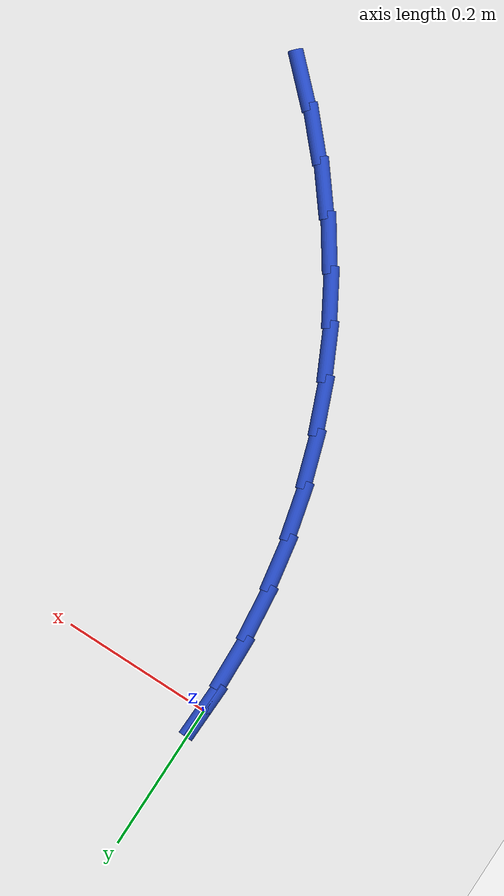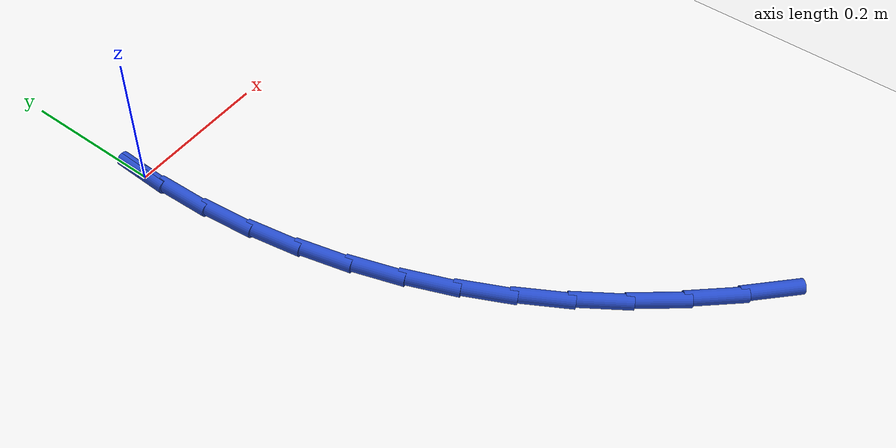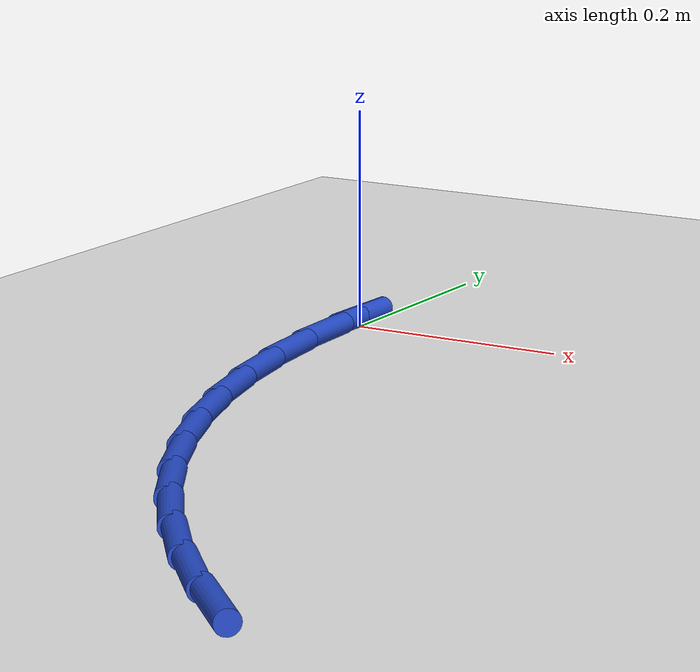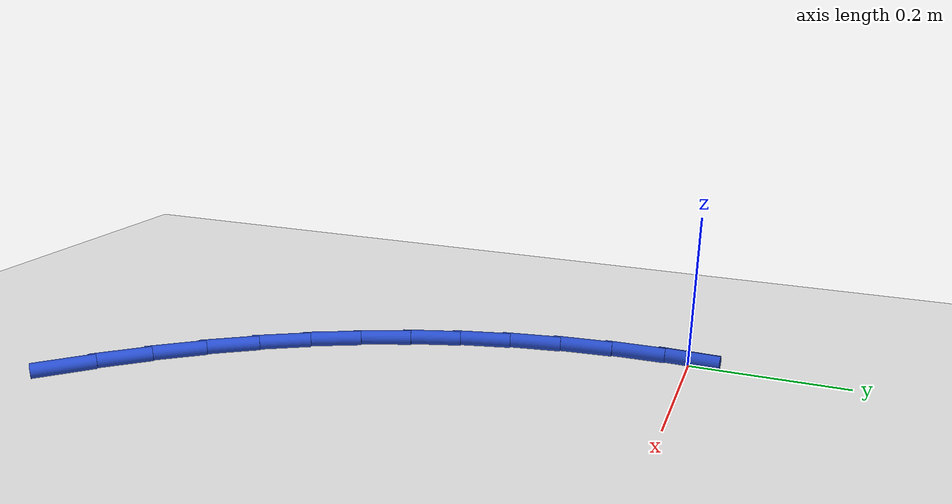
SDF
<sdf version="1.6">
 <world name="default">
  <model name="ground_plane">
   <static>1</static>
   <link name="link">
    <collision name="collision">
     <geometry><plane><normal>0 0 1</normal><size>100 100</size></plane></geometry>
     <surface><friction><ode><mu>100</mu><mu2>50</mu2></ode></friction></surface>
    </collision>
    <visual name="visual">
     <cast_shadows>0</cast_shadows>
     <geometry><plane><normal>0 0 1</normal><size>100 100</size></plane></geometry>
     <material>
      <script><uri>file://media/materials/scripts/gazebo.material</uri><name>Gazebo/WhiteGlow</name></script>
     </material>
    </visual>
   </link>
  </model>
  <model name="line">
   <link name="link_0">
    <pose>-1.734723475976807e-17 8.326672684688674e-17 0.01 0 1.57 1.5382158034172053</pose>
    <collision name="collision">
     <geometry><cylinder><radius>0.01</radius><length>0.08</length></cylinder></geometry>
    </collision>
    <visual name="visual">
     <material>
      <script><name>Gazebo/Blue</name><uri>file://media/materials/scripts/gazebo.material</uri></script>
     </material>
     <geometry><cylinder><radius>0.01</radius><length>0.08</length></cylinder></geometry>
    </visual>
   </link>
   <link name="link_98">
    <pose>0.3311340445507422 -0.7413080871282756 0.01 0 1.57 -0.7678749545440806</pose>
    <collision name="collision">
     <geometry><cylinder><radius>0.01</radius><length>0.08</length></cylinder></geometry>
    </collision>
    <visual name="visual">
     <material>
      <script><name>Gazebo/Blue</name><uri>file://media/materials/scripts/gazebo.material</uri></script>
     </material>
     <geometry><cylinder><radius>0.01</radius><length>0.08</length></cylinder></geometry>
    </visual>
   </link>
   <link name="link_99">
    <pose>0.2805721604973442 -0.6924878745810826 0.01 0 1.57 -0.8341403816708411</pose>
    <collision name="collision">
     <geometry><cylinder><radius>0.01</radius><length>0.08</length></cylinder></geometry>
    </collision>
    <visual name="visual">
     <material>
      <script><name>Gazebo/Blue</name><uri>file://media/materials/scripts/gazebo.material</uri></script>
     </material>
     <geometry><cylinder><radius>0.01</radius><length>0.08</length></cylinder></geometry>
    </visual>
   </link>
   <link name="link_100">
    <pose>0.23331120928367385 -0.6403796078937709 0.01 0 1.57 -0.9017629867846866</pose>
    <collision name="collision">
     <geometry><cylinder><radius>0.01</radius><length>0.08</length></cylinder></geometry>
    </collision>
    <visual name="visual">
     <material>
      <script><name>Gazebo/Blue</name><uri>file://media/materials/scripts/gazebo.material</uri></script>
     </material>
     <geometry><cylinder><radius>0.01</radius><length>0.08</length></cylinder></geometry>
    </visual>
   </link>
   <link name="link_101">
    <pose>0.1897791320099406 -0.5853232407538093 0.01 0 1.57 -0.971678317863092</pose>
    <collision name="collision">
     <geometry><cylinder><radius>0.01</radius><length>0.08</length></cylinder></geometry>
    </collision>
    <visual name="visual">
     <material>
      <script><name>Gazebo/Blue</name><uri>file://media/materials/scripts/gazebo.material</uri></script>
     </material>
     <geometry><cylinder><radius>0.01</radius><length>0.08</length></cylinder></geometry>
    </visual>
   </link>
   <link name="link_102">
    <pose>0.15040315765034046 -0.5276584677490873 0.01 0 1.57 -1.0436772218099946</pose>
    <collision name="collision">
     <geometry><cylinder><radius>0.01</radius><length>0.08</length></cylinder></geometry>
    </collision>
    <visual name="visual">
     <material>
      <script><name>Gazebo/Blue</name><uri>file://media/materials/scripts/gazebo.material</uri></script>
     </material>
     <geometry><cylinder><radius>0.01</radius><length>0.08</length></cylinder></geometry>
    </visual>
   </link>
   <link name="link_103">
    <pose>0.11549397619499756 -0.4676825819810109 0.01 0 1.57 -1.115727153268678</pose>
    <collision name="collision">
     <geometry><cylinder><radius>0.01</radius><length>0.08</length></cylinder></geometry>
    </collision>
    <visual name="visual">
     <material>
      <script><name>Gazebo/Blue</name><uri>file://media/materials/scripts/gazebo.material</uri></script>
     </material>
     <geometry><cylinder><radius>0.01</radius><length>0.08</length></cylinder></geometry>
    </visual>
   </link>
   <link name="link_104">
    <pose>0.08511742714019435 -0.40560379026807053 0.01 0 1.57 -1.1873954752358709</pose>
    <collision name="collision">
     <geometry><cylinder><radius>0.01</radius><length>0.08</length></cylinder></geometry>
    </collision>
    <visual name="visual">
     <material>
      <script><name>Gazebo/Blue</name><uri>file://media/materials/scripts/gazebo.material</uri></script>
     </material>
     <geometry><cylinder><radius>0.01</radius><length>0.08</length></cylinder></geometry>
    </visual>
   </link>
   <link name="link_105">
    <pose>0.059308449535525914 -0.3416190566254763 0.01 0 1.57 -1.2585481343820197</pose>
    <collision name="collision">
     <geometry><cylinder><radius>0.01</radius><length>0.08</length></cylinder></geometry>
    </collision>
    <visual name="visual">
     <material>
      <script><name>Gazebo/Blue</name><uri>file://media/materials/scripts/gazebo.material</uri></script>
     </material>
     <geometry><cylinder><radius>0.01</radius><length>0.08</length></cylinder></geometry>
    </visual>
   </link>
   <link name="link_106">
    <pose>0.03810198243058592 -0.27592534506843597 0.01 0 1.57 -1.3290751208084632</pose>
    <collision name="collision">
     <geometry><cylinder><radius>0.01</radius><length>0.08</length></cylinder></geometry>
    </collision>
    <visual name="visual">
     <material>
      <script><name>Gazebo/Blue</name><uri>file://media/materials/scripts/gazebo.material</uri></script>
     </material>
     <geometry><cylinder><radius>0.01</radius><length>0.08</length></cylinder></geometry>
    </visual>
   </link>
   <link name="link_107">
    <pose>0.021532964874969182 -0.20871961961215976 0.01 0 1.57 -1.3988892308354692</pose>
    <collision name="collision">
     <geometry><cylinder><radius>0.01</radius><length>0.08</length></cylinder></geometry>
    </collision>
    <visual name="visual">
     <material>
      <script><name>Gazebo/Blue</name><uri>file://media/materials/scripts/gazebo.material</uri></script>
     </material>
     <geometry><cylinder><radius>0.01</radius><length>0.08</length></cylinder></geometry>
    </visual>
   </link>
   <link name="link_108">
    <pose>0.009636335918269621 -0.1401988442718551 0.01 0 1.57 -1.4679238441134754</pose>
    <collision name="collision">
     <geometry><cylinder><radius>0.01</radius><length>0.08</length></cylinder></geometry>
    </collision>
    <visual name="visual">
     <material>
      <script><name>Gazebo/Blue</name><uri>file://media/materials/scripts/gazebo.material</uri></script>
     </material>
     <geometry><cylinder><radius>0.01</radius><length>0.08</length></cylinder></geometry>
    </visual>
   </link>
   <link name="link_109">
    <pose>0.00244703461008184 -0.07055998306273269 0.01 0 1.57 -1.5361300162097156</pose>
    <collision name="collision">
     <geometry><cylinder><radius>0.01</radius><length>0.08</length></cylinder></geometry>
    </collision>
    <visual name="visual">
     <material>
      <script><name>Gazebo/Blue</name><uri>file://media/materials/scripts/gazebo.material</uri></script>
     </material>
     <geometry><cylinder><radius>0.01</radius><length>0.08</length></cylinder></geometry>
    </visual>
   </link>
   <link name="link_110">
    <pose>-3.469446951953614e-17 3.191891195797325e-16 0.01 0 1.57 1.538119469342427</pose>
    <collision name="collision">
     <geometry><cylinder><radius>0.01</radius><length>0.08</length></cylinder></geometry>
    </collision>
    <visual name="visual">
     <material>
      <script><name>Gazebo/Blue</name><uri>file://media/materials/scripts/gazebo.material</uri></script>
     </material>
     <geometry><cylinder><radius>0.01</radius><length>0.08</length></cylinder></geometry>
    </visual>
   </link>
  </model>
 </world>
</sdf>
